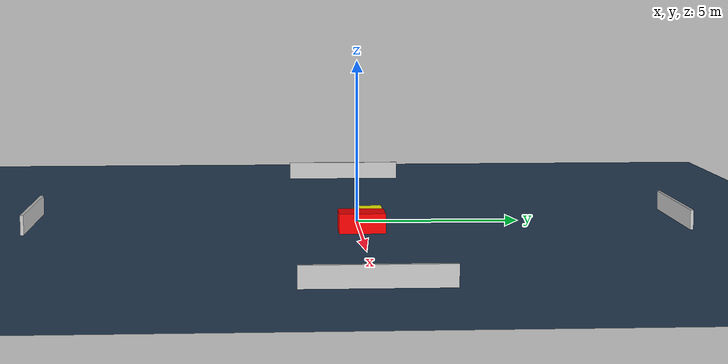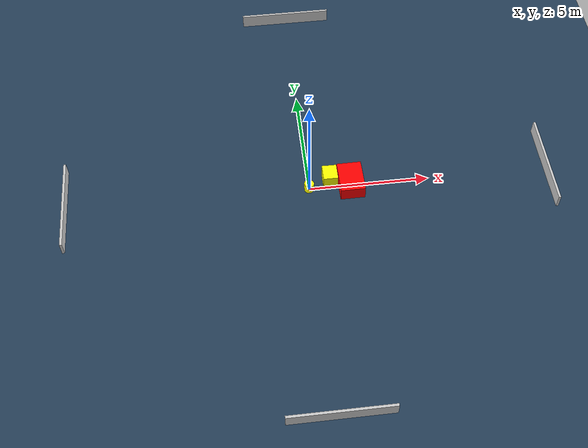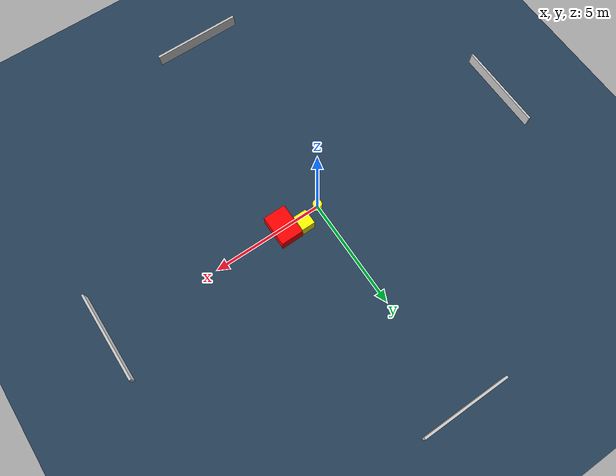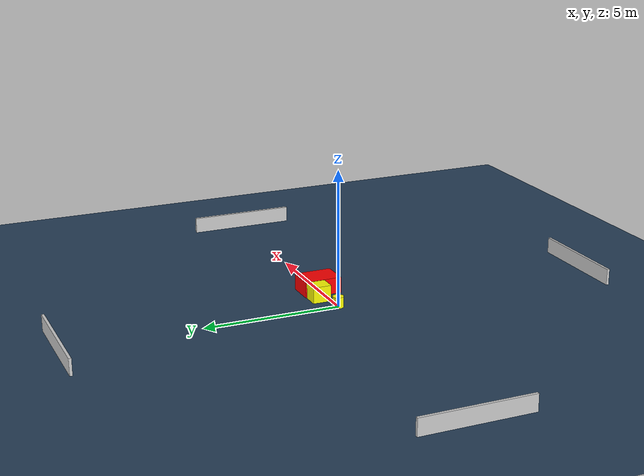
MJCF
<?xml version="1.0" ?>
<mujoco model="generated_environment">
  <option timestep="0.01" integrator="RK4" cone="elliptic"/>
  <default>
    <geom density="1"/>
  </default>
  <asset>
    <texture builtin="gradient" height="3072" name="skybox" rgb1="0.3 0.5 0.7" rgb2="0 0 0" type="skybox" width="512"/>
    <texture builtin="checker" height="300" name="groundplane" rgb1="0.2 0.3 0.4" rgb2="0.1 0.2 0.3" type="2d" width="300"/>
    <material name="groundplane" reflectance="0.2" texrepeat="5 5" texture="groundplane"/>
  </asset>
  <worldbody>
    <light dir="0 0 -1" directional="true" pos="0 0 1.5"/>
    <geom condim="3" friction="0.5 0.005 0.001" material="groundplane" name="floor" pos="0 0 0" size="0 0 0.05" type="plane"/>
    <body name="walls">
      <geom name="wall_1" condim="4" pos="-10.0 0.0 0.3" rgba="0.800000011920929 0.800000011920929 0.800000011920929 1.0" size="0.05 2.0 0.3" type="box"/>
      <geom name="wall_2" condim="4" pos="10.0 0.0 0.3" rgba="0.800000011920929 0.800000011920929 0.800000011920929 1.0" size="0.05 2.0 0.3" type="box"/>
      <geom name="wall_3" condim="4" pos="0.0 -10.0 0.3" rgba="0.800000011920929 0.800000011920929 0.800000011920929 1.0" size="2.0 0.05 0.3" type="box"/>
      <geom name="wall_4" condim="4" pos="0.0 10.0 0.3" rgba="0.800000011920929 0.800000011920929 0.800000011920929 1.0" size="2.0 0.05 0.3" type="box"/>
    </body>
    <body name="robot">
      <joint name="joint_x" type="slide" pos="0 0 0" axis="1 0 0"/>
      <joint name="joint_y" type="slide" pos="0 0 0" axis="0 1 0"/>
      <geom name="robot" type="cylinder" pos="0.0 0.0 0.2" size="0.2 0.2 0.0" mass="5.0" friction="1.0 0.005 0.0001" condim="4" rgba="1.0 1.0 0.0 1.0"/>
    </body>
    <body name="obstacle_1_movable">
      <geom name="obstacle_1_movable" condim="4" pos="0.9056081195509929 0.3502261478667018 0.3" euler="0 0 179.87530936290636" friction="0.0 0.005 0.001" rgba="1.0 1.0 0.0 1.0" size="0.3042460210790263 0.34540310946785024 0.3" type="box" mass="0.1"/>
      <joint type="free"/>
    </body>
    <body name="obstacle_2_static">
      <geom name="obstacle_2_static" condim="4" pos="1.7398705459273078 0.03910911745035986 0.3" euler="0 0 0.5868829680441223" friction="0.0 0.005 0.001" rgba="1.0 0.0 0.0 1.0" size="0.507263678567218 0.6952107072793179 0.3" type="box"/>
    </body>
  </worldbody>
  <actuator>
    <motor name="actuator_x" joint="joint_x" gear="1" ctrlrange="-1 1"/>
    <motor name="actuator_y" joint="joint_y" gear="1" ctrlrange="-1 1"/>
  </actuator>
</mujoco>
